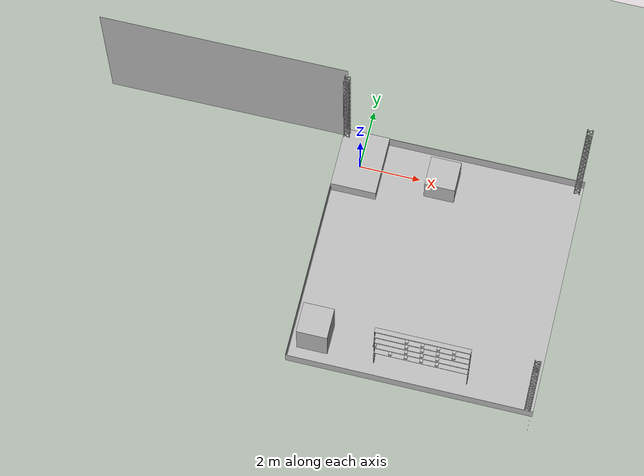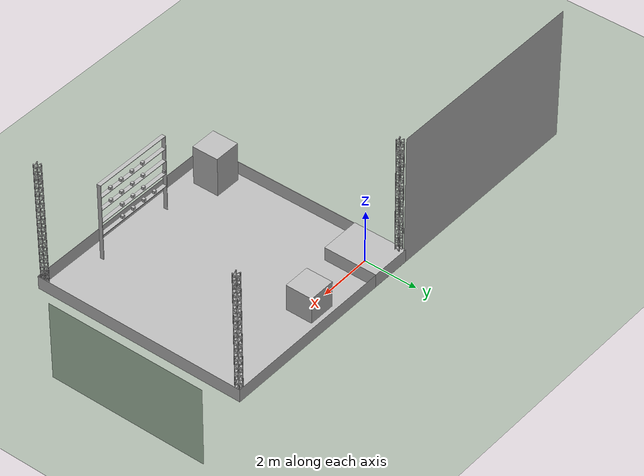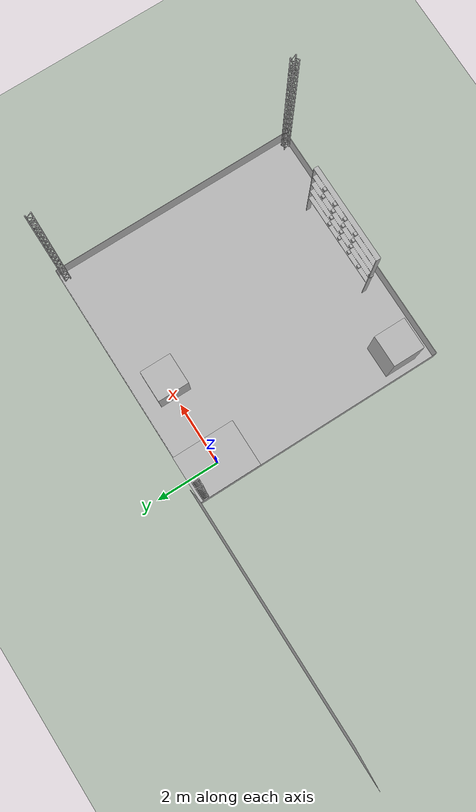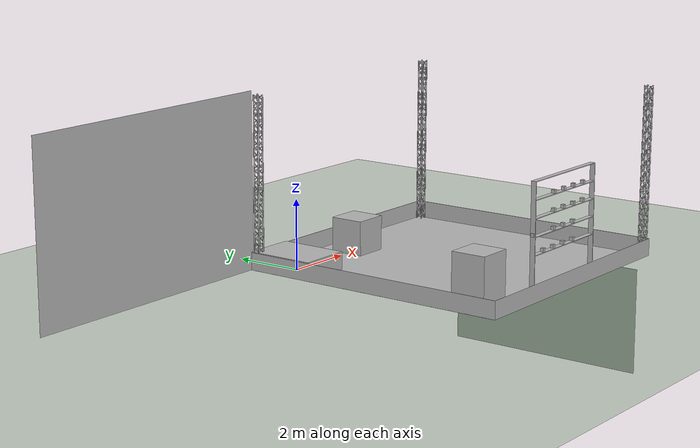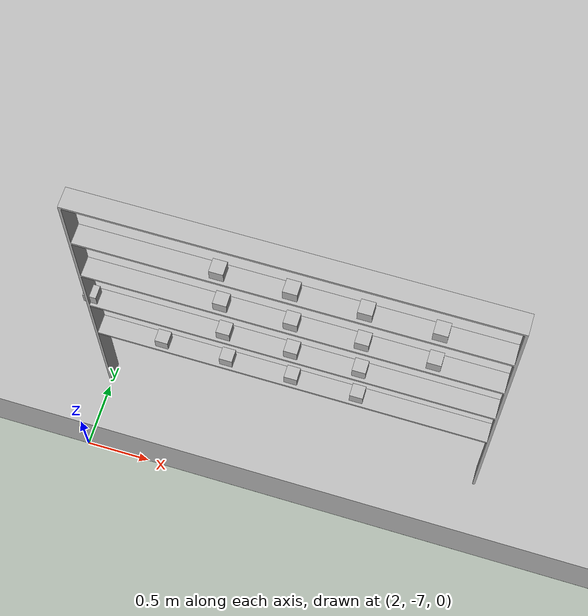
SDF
<?xml version="1.0" ?>
<sdf version="1.9">
  <world name="default">
    <plugin filename="gz-sim-physics-system" name="gz::sim::systems::Physics"/>
    <plugin filename="gz-sim-user-commands-system" name="gz::sim::systems::UserCommands"/>
    <plugin filename="gz-sim-scene-broadcaster-system" name="gz::sim::systems::SceneBroadcaster"/>
    <plugin filename="gz-sim-sensors-system" name="gz::sim::systems::Sensors">
      <render_engine>ogre2</render_engine>
    </plugin>

    <gui fullscreen="0">
      <camera name="user_camera">
        <pose>15 2 10 0 0.6 -2.64</pose>
      </camera>
    </gui>

    <light type="directional" name="sun">
      <cast_shadows>true</cast_shadows>
      <pose>250 250 600 0 0 0</pose>
      <diffuse>0.8 0.8 0.8 1</diffuse>
      <specular>0.2 0.2 0.2 1</specular>
      <direction>0 0 -1</direction>
    </light>

    <model name="ground_plane">
      <static>true</static>
      <link name="link">
        <collision name="collision">
          <geometry><plane><normal>0 0 1</normal><size>250 250</size></plane></geometry>
        </collision>
        <visual name="visual">
          <geometry><plane><normal>0 0 1</normal><size>250 250</size></plane></geometry>
          <material><ambient>0.3 0.5 0.3 1</ambient><diffuse>0.3 0.5 0.3 1</diffuse></material>
        </visual>
      </link>
    </model>

    <include><name>arena</name><uri>model://arena_spawn</uri><pose>-0.75 -7.0 0.001 0 0 0</pose></include>
    <include><name>takeoff_platform</name><uri>model://takeoff_platform</uri><pose>0 0 0 0 0 0</pose></include>
    <include><name>banner</name><uri>model://banner</uri><pose>-0.75 -6.9 0 0 0 0</pose></include>
    <include><name>banner_2</name><uri>model://banner_2</uri><pose>-0.65 1.0 0 0 0 -1.57</pose></include>
    <include><name>landing_platform_A</name><uri>model://suspended_landing_platform</uri><pose>2.75 0.0 1.0 0 0 0</pose></include>
    <include><name>landing_platform_E</name><uri>model://suspended_landing_platform</uri><pose>0.0 -6.0 1.5 0 0 0</pose></include>
    <include><name>barcodeshelf</name><uri>model://barcode_shelf</uri><pose>5.0 -6.45 0.0 0.0 0.0 1.57</pose></include>

    <include><name>box_A0</name><uri>model://box_A0</uri><pose>4.0 -6.375 2.55 0 0 0</pose></include>
    <include><name>box_A1</name><uri>model://box_A1</uri><pose>4.5 -6.375 2.55 0 1.57 0</pose></include>
    <include><name>box_A2</name><uri>model://box_A2</uri><pose>3.0 -6.375 2.55 0 0 0</pose></include>
    <include><name>box_A3</name><uri>model://box_A3</uri><pose>3.5 -6.375 2.55 0 1.57 0</pose></include>
    <include><name>box_B0</name><uri>model://box_B0</uri><pose>3.5 -6.375 2.05 0 1.57 0</pose></include>
    <include><name>box_B1</name><uri>model://box_B1</uri><pose>4.0 -6.375 2.05 0 1.57 0</pose></include>
    <include><name>box_B2</name><uri>model://box_B2</uri><pose>3.0 -6.375 2.05 0 0 0</pose></include>
    <include><name>box_B3</name><uri>model://box_B3</uri><pose>4.5 -6.375 2.05 0 0 0</pose></include>
    <include><name>box_C0</name><uri>model://box_C0</uri><pose>3.5 -6.375 1.55 0 1.57 0</pose></include>
    <include><name>box_C1</name><uri>model://box_C1</uri><pose>2.0 -6.375 1.55 0 1.57 0</pose></include>
    <include><name>box_C2</name><uri>model://box_C2</uri><pose>3.0 -6.375 1.55 0 0 0</pose></include>
    <include><name>box_C3</name><uri>model://box_C3</uri><pose>4.0 -6.375 1.55 0 0 0</pose></include>
    <include><name>box_D0</name><uri>model://box_D0</uri><pose>3.0 -6.375 1.05 0 1.57 0</pose></include>
    <include><name>box_D1</name><uri>model://box_D1</uri><pose>4.0 -6.375 1.05 0 1.57 0</pose></include>
    <include><name>box_D2</name><uri>model://box_D2</uri><pose>2.5 -6.375 1.05 0 0 0</pose></include>
    <include><name>box_D3</name><uri>model://box_D3</uri><pose>3.5 -6.375 1.05 0 0 0</pose></include>
  </world>
</sdf>

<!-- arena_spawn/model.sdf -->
<sdf version='1.6'>
  <model name='arena_spawn'>
    <link name='link_arena'>
      <inertial>
        <mass>15</mass>
        <inertia>
          <ixx>1</ixx>
          <ixy>1</ixy>
          <ixz>1</ixz>
          <iyy>1</iyy>
          <iyz>1</iyz>
          <izz>1</izz>
        </inertia>
      </inertial>
      <self_collide>1</self_collide>
      <enable_wind>0</enable_wind>
      <kinematic>0</kinematic>
      <pose frame=''>0 0 0 0 -0 0</pose>
      <visual name='visual'>
        <pose frame=''>0 0 0 0 -0 0</pose>
        <geometry>
          <mesh>
            <uri>model://arena_spawn/meshes/Arena.obj</uri>
            <scale>1 1 1</scale>
          </mesh>
        </geometry>
        <transparency>0</transparency>
        <cast_shadows>1</cast_shadows>
      </visual>
      <collision name='collision'>
        <laser_retro>0</laser_retro>
        <max_contacts>10</max_contacts>
        <pose frame=''>0 0 0 0 -0 0</pose>
        <geometry>
          <mesh>
            <uri>model://arena_spawn/meshes/Arena.obj</uri>
            <scale>1 1 1</scale>
          </mesh>
        </geometry>
        <surface>
          <friction>
            <ode>
              <mu>1</mu>
              <mu2>1</mu2>
              <fdir1>0 0 0</fdir1>
              <slip1>0</slip1>
              <slip2>0</slip2>
            </ode>
            <torsional>
              <coefficient>1</coefficient>
              <patch_radius>100</patch_radius>
              <surface_radius>100</surface_radius>
              <use_patch_radius>1</use_patch_radius>
              <ode>
                <slip>0</slip>
              </ode>
            </torsional>
          </friction>
          <bounce>
            <restitution_coefficient>0</restitution_coefficient>
            <threshold>1e+06</threshold>
          </bounce>
          <contact>
            <collide_without_contact>0</collide_without_contact>
            <collide_without_contact_bitmask>1</collide_without_contact_bitmask>
            <collide_bitmask>1</collide_bitmask>
            <ode>
              <soft_cfm>0</soft_cfm>
              <soft_erp>0.2</soft_erp>
              <kp>1e+13</kp>
              <kd>1</kd>
              <max_vel>0.01</max_vel>
              <min_depth>0</min_depth>
            </ode>
            <bullet>
              <split_impulse>1</split_impulse>
              <split_impulse_penetration_threshold>-0.01</split_impulse_penetration_threshold>
              <soft_cfm>0</soft_cfm>
              <soft_erp>0.2</soft_erp>
              <kp>1e+13</kp>
              <kd>1</kd>
            </bullet>
          </contact>
        </surface>
      </collision>
    </link>
    <link name='pilar_2'>
      <inertial>
        <mass>1</mass>
        <inertia>
          <ixx>0.166667</ixx>
          <ixy>0</ixy>
          <ixz>0</ixz>
          <iyy>0.166667</iyy>
          <iyz>0</iyz>
          <izz>0.166667</izz>
        </inertia>
      </inertial>
      <self_collide>1</self_collide>
      <enable_wind>0</enable_wind>
      <kinematic>0</kinematic>
      <pose frame=''>7.7 0 0 0 -0 0</pose>
      <visual name='visual'>
        <pose frame=''>0 0 0 0 -0 0</pose>
        <geometry>
          <mesh>
            <uri>model://arena_spawn/meshes/pilar.obj</uri>
            <scale>1 1 1</scale>
          </mesh>
        </geometry>
        <transparency>0</transparency>
        <cast_shadows>1</cast_shadows>
      </visual>
      <collision name='collision'>
        <laser_retro>0</laser_retro>
        <max_contacts>10</max_contacts>
        <pose frame=''>0 0 0 0 -0 0</pose>
        <geometry>
          <mesh>
            <uri>model://arena_spawn/meshes/pilar.obj</uri>
            <scale>1 1 1</scale>
          </mesh>
        </geometry>
        <surface>
          <friction>
            <ode>
              <mu>1</mu>
              <mu2>1</mu2>
              <fdir1>0 0 0</fdir1>
              <slip1>0</slip1>
              <slip2>0</slip2>
            </ode>
            <torsional>
              <coefficient>1</coefficient>
              <patch_radius>100</patch_radius>
              <surface_radius>100</surface_radius>
              <use_patch_radius>1</use_patch_radius>
              <ode>
                <slip>0</slip>
              </ode>
            </torsional>
          </friction>
          <bounce>
            <restitution_coefficient>0</restitution_coefficient>
            <threshold>1e+06</threshold>
          </bounce>
          <contact>
            <collide_without_contact>0</collide_without_contact>
            <collide_without_contact_bitmask>1</collide_without_contact_bitmask>
            <collide_bitmask>1</collide_bitmask>
            <ode>
              <soft_cfm>0</soft_cfm>
              <soft_erp>0.2</soft_erp>
              <kp>1e+13</kp>
              <kd>1</kd>
              <max_vel>0.01</max_vel>
              <min_depth>0</min_depth>
            </ode>
            <bullet>
              <split_impulse>1</split_impulse>
              <split_impulse_penetration_threshold>-0.01</split_impulse_penetration_threshold>
              <soft_cfm>0</soft_cfm>
              <soft_erp>0.2</soft_erp>
              <kp>1e+13</kp>
              <kd>1</kd>
            </bullet>
          </contact>
        </surface>
      </collision>
    </link>
    <link name='pilar_3'>
      <inertial>
        <mass>1</mass>
        <inertia>
          <ixx>0.166667</ixx>
          <ixy>0</ixy>
          <ixz>0</ixz>
          <iyy>0.166667</iyy>
          <iyz>0</iyz>
          <izz>0.166667</izz>
        </inertia>
      </inertial>
      <self_collide>1</self_collide>
      <enable_wind>0</enable_wind>
      <kinematic>0</kinematic>
      <pose frame=''>0 7.7 0 0 -0 0</pose>
      <visual name='visual'>
        <pose frame=''>0 0 0 0 -0 0</pose>
        <geometry>
          <mesh>
            <uri>model://arena_spawn/meshes/pilar.obj</uri>
            <scale>1 1 1</scale>
          </mesh>
        </geometry>
        <transparency>0</transparency>
        <cast_shadows>1</cast_shadows>
      </visual>
      <collision name='collision'>
        <laser_retro>0</laser_retro>
        <max_contacts>10</max_contacts>
        <pose frame=''>0 0 0 0 -0 0</pose>
        <geometry>
          <mesh>
            <uri>model://arena_spawn/meshes/pilar.obj</uri>
            <scale>1 1 1</scale>
          </mesh>
        </geometry>
        <surface>
          <friction>
            <ode>
              <mu>1</mu>
              <mu2>1</mu2>
              <fdir1>0 0 0</fdir1>
              <slip1>0</slip1>
              <slip2>0</slip2>
            </ode>
            <torsional>
              <coefficient>1</coefficient>
              <patch_radius>100</patch_radius>
              <surface_radius>100</surface_radius>
              <use_patch_radius>1</use_patch_radius>
              <ode>
                <slip>0</slip>
              </ode>
            </torsional>
          </friction>
          <bounce>
            <restitution_coefficient>0</restitution_coefficient>
            <threshold>1e+06</threshold>
          </bounce>
          <contact>
            <collide_without_contact>0</collide_without_contact>
            <collide_without_contact_bitmask>1</collide_without_contact_bitmask>
            <collide_bitmask>1</collide_bitmask>
            <ode>
              <soft_cfm>0</soft_cfm>
              <soft_erp>0.2</soft_erp>
              <kp>1e+13</kp>
              <kd>1</kd>
              <max_vel>0.01</max_vel>
              <min_depth>0</min_depth>
            </ode>
            <bullet>
              <split_impulse>1</split_impulse>
              <split_impulse_penetration_threshold>-0.01</split_impulse_penetration_threshold>
              <soft_cfm>0</soft_cfm>
              <soft_erp>0.2</soft_erp>
              <kp>1e+13</kp>
              <kd>1</kd>
            </bullet>
          </contact>
        </surface>
      </collision>
    </link>
    <link name='pilar_4'>
      <inertial>
        <mass>1</mass>
        <inertia>
          <ixx>0.166667</ixx>
          <ixy>0</ixy>
          <ixz>0</ixz>
          <iyy>0.166667</iyy>
          <iyz>0</iyz>
          <izz>0.166667</izz>
        </inertia>
      </inertial>
      <self_collide>1</self_collide>
      <enable_wind>0</enable_wind>
      <kinematic>0</kinematic>
      <pose frame=''>7.7 7.7 0 0 -0 0</pose>
      <visual name='visual'>
        <pose frame=''>0 0 0 0 -0 0</pose>
        <geometry>
          <mesh>
            <uri>model://arena_spawn/meshes/pilar.obj</uri>
            <scale>1 1 1</scale>
          </mesh>
        </geometry>
        <transparency>0</transparency>
        <cast_shadows>1</cast_shadows>
      </visual>
      <collision name='collision'>
        <laser_retro>0</laser_retro>
        <max_contacts>10</max_contacts>
        <pose frame=''>0 0 0 0 -0 0</pose>
        <geometry>
          <mesh>
            <uri>model://arena_spawn/meshes/pilar.obj</uri>
            <scale>1 1 1</scale>
          </mesh>
        </geometry>
        <surface>
          <friction>
            <ode>
              <mu>1</mu>
              <mu2>1</mu2>
              <fdir1>0 0 0</fdir1>
              <slip1>0</slip1>
              <slip2>0</slip2>
            </ode>
            <torsional>
              <coefficient>1</coefficient>
              <patch_radius>100</patch_radius>
              <surface_radius>100</surface_radius>
              <use_patch_radius>1</use_patch_radius>
              <ode>
                <slip>0</slip>
              </ode>
            </torsional>
          </friction>
          <bounce>
            <restitution_coefficient>0</restitution_coefficient>
            <threshold>1e+06</threshold>
          </bounce>
          <contact>
            <collide_without_contact>0</collide_without_contact>
            <collide_without_contact_bitmask>1</collide_without_contact_bitmask>
            <collide_bitmask>1</collide_bitmask>
            <ode>
              <soft_cfm>0</soft_cfm>
              <soft_erp>0.2</soft_erp>
              <kp>1e+13</kp>
              <kd>1</kd>
              <max_vel>0.01</max_vel>
              <min_depth>0</min_depth>
            </ode>
            <bullet>
              <split_impulse>1</split_impulse>
              <split_impulse_penetration_threshold>-0.01</split_impulse_penetration_threshold>
              <soft_cfm>0</soft_cfm>
              <soft_erp>0.2</soft_erp>
              <kp>1e+13</kp>
              <kd>1</kd>
            </bullet>
          </contact>
        </surface>
      </collision>
    </link>
    <static>1</static>
    <pose frame=''>0 0 0.0005 0 -0 0</pose>
  </model>
</sdf>

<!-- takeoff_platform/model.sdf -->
<sdf version='1.6'>
  <model name='takeoff_platform'>
    <link name='link_takeoff_platform'>
      <inertial>
        <mass>15</mass>
        <inertia>
          <ixx>1</ixx>
          <ixy>0</ixy>
          <ixz>0</ixz>
          <iyy>1</iyy>
          <iyz>0</iyz>
          <izz>1</izz>
        </inertia>
      </inertial>
      <self_collide>1</self_collide>
      <enable_wind>0</enable_wind>
      <kinematic>0</kinematic>
      <pose frame=''>0 0 0 0 -0 0</pose>
      <visual name='visual'>
        <pose frame=''>0 0 0 0 -0 0</pose>
        <geometry>
          <mesh>
            <uri>model://takeoff_platform/meshes/takeoff_platform.obj</uri>
            <scale>1 1 1</scale>
          </mesh>
        </geometry>
        <transparency>0</transparency>
        <cast_shadows>1</cast_shadows>
      </visual>
      <collision name='collision'>
        <laser_retro>0</laser_retro>
        <max_contacts>10</max_contacts>
        <pose frame=''>0 0 0 0 -0 0</pose>
        <geometry>
          <mesh>
            <uri>model://takeoff_platform/meshes/takeoff_platform.obj</uri>
            <scale>1 1 1</scale>
          </mesh>
        </geometry>
        <surface>
          <friction>
            <ode>
              <mu>1</mu>
              <mu2>1</mu2>
              <fdir1>0 0 0</fdir1>
              <slip1>0</slip1>
              <slip2>0</slip2>
            </ode>
            <torsional>
              <coefficient>1</coefficient>
              <patch_radius>100</patch_radius>
              <surface_radius>100</surface_radius>
              <use_patch_radius>1</use_patch_radius>
              <ode>
                <slip>0</slip>
              </ode>
            </torsional>
          </friction>
          <bounce>
            <restitution_coefficient>0</restitution_coefficient>
            <threshold>1e+06</threshold>
          </bounce>
          <contact>
            <collide_without_contact>0</collide_without_contact>
            <collide_without_contact_bitmask>1</collide_without_contact_bitmask>
            <collide_bitmask>1</collide_bitmask>
            <ode>
              <soft_cfm>0</soft_cfm>
              <soft_erp>0.2</soft_erp>
              <kp>1e+13</kp>
              <kd>1</kd>
              <max_vel>0.01</max_vel>
              <min_depth>0</min_depth>
            </ode>
            <bullet>
              <split_impulse>1</split_impulse>
              <split_impulse_penetration_threshold>-0.01</split_impulse_penetration_threshold>
              <soft_cfm>0</soft_cfm>
              <soft_erp>0.2</soft_erp>
              <kp>1e+13</kp>
              <kd>1</kd>
            </bullet>
          </contact>
        </surface>
      </collision>
    </link>
    <static>1</static>
    <pose frame=''>0 0 0.0005 0 -0 0</pose>
  </model>
</sdf>

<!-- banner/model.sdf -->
<sdf version='1.9'>
  <model name='banner'>
    <link name='link_0'>
      <inertial>
        <mass>1</mass>
        <inertia>
          <ixx>0.166667</ixx> <ixy>0</ixy> <ixz>0</ixz>
          <iyy>0.166667</iyy> <iyz>0</iyz> <izz>0.166667</izz>
        </inertia>
      </inertial>
      <pose>0 0 0 0 0 0</pose>
      <visual name='visual'>
        <geometry>
          <mesh>
            <uri>model://banner/meshes/banner.obj</uri>
            <scale>1.0 1.0 1.0</scale>
          </mesh>
        </geometry>
      </visual>
      <collision name='collision'>
        <geometry>
          <mesh>
            <uri>model://banner/meshes/banner.obj</uri>
            <scale>1.0 1.0 1.0</scale>
          </mesh>
        </geometry>
      </collision>
    </link>
    <static>true</static>
  </model>
</sdf>

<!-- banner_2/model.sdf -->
<sdf version='1.6'>
  <model name='banner_2'>
    <link name='link_0'>
      <inertial>
        <mass>1</mass>
        <inertia>
          <ixx>0.166667</ixx>
          <ixy>0</ixy>
          <ixz>0</ixz>
          <iyy>0.166667</iyy>
          <iyz>0</iyz>
          <izz>0.166667</izz>
        </inertia>
      </inertial>
      <pose>0 0 0 0 -0 0</pose>
      <visual name='visual'>
        <pose>0 0 0 0 -0 -1.57</pose>
        <geometry>
          <mesh>
            <uri>model://banner_2/meshes/banner.obj</uri>
            <scale>1.0 1.0 1.0</scale>
          </mesh>
        </geometry>
        <transparency>0</transparency>
        <cast_shadows>1</cast_shadows>
      </visual>
      <collision name='collision'>
        <laser_retro>0</laser_retro>
        <max_contacts>10</max_contacts>
        <pose>0 0 0 0 -0 -1.57</pose>
        <geometry>
          <mesh>
            <uri>model://banner_2/meshes/banner.obj</uri>
            <scale>1.0 1.0 1.0</scale>
          </mesh>
        </geometry>
      </collision>
    </link>
    <static>1</static>
    <allow_auto_disable>1</allow_auto_disable>
  </model>
</sdf>

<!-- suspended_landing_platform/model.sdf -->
<sdf version='1.6'>
  <model name='suspended_landing_platform'>
    <link name='link_suspended_landing_platform'>
      <inertial>
        <mass>1</mass>
        <inertia>
          <ixx>0.166667</ixx>
          <ixy>0</ixy>
          <ixz>0</ixz>
          <iyy>0.166667</iyy>
          <iyz>0</iyz>
          <izz>0.166667</izz>
        </inertia>
        <pose>0 0 0 0 -0 0</pose>
      </inertial>
      <self_collide>0</self_collide>
      <enable_wind>0</enable_wind>
      <kinematic>0</kinematic>
      <pose>0 0 0 0 -0 0</pose>
      <gravity>1</gravity>
      <visual name='visual'>
        <pose frame=''>0 0 0 0 -0 0</pose>
        <geometry>
          <mesh>
            <uri>model://suspended_landing_platform/meshes/suspended_landing_platform.obj</uri>
            <scale>1 1 1</scale>
          </mesh>
        </geometry>
        <transparency>0</transparency>
        <cast_shadows>1</cast_shadows>
      </visual>
      <collision name='collision'>
        <laser_retro>0</laser_retro>
        <max_contacts>10</max_contacts>
        <pose>0 0 -0.75 0 -0 0</pose>
        <geometry>
          <box>
            <size>1 1 1.5</size>
          </box>
        </geometry>
        <surface>
          <friction>
            <ode>
              <mu>100</mu>
              <mu2>100</mu2>
              <fdir1>0 0 0</fdir1>
              <slip1>0</slip1>
              <slip2>0</slip2>
            </ode>
            <torsional>
              <coefficient>1</coefficient>
              <patch_radius>1</patch_radius>
              <surface_radius>1</surface_radius>
              <use_patch_radius>1</use_patch_radius>
              <ode>
                <slip>0</slip>
              </ode>
            </torsional>
          </friction>
          <bounce>
            <restitution_coefficient>1</restitution_coefficient>
            <threshold>1e+06</threshold>
          </bounce>
          <contact>
            <collide_without_contact>0</collide_without_contact>
            <collide_without_contact_bitmask>1</collide_without_contact_bitmask>
            <collide_bitmask>1</collide_bitmask>
            <ode>
              <soft_cfm>0</soft_cfm>
              <soft_erp>0.2</soft_erp>
              <kp>1e+13</kp>
              <kd>1</kd>
              <max_vel>0.01</max_vel>
              <min_depth>0</min_depth>
            </ode>
            <bullet>
              <split_impulse>1</split_impulse>
              <split_impulse_penetration_threshold>-0.01</split_impulse_penetration_threshold>
              <soft_cfm>0</soft_cfm>
              <soft_erp>0.2</soft_erp>
              <kp>1e+13</kp>
              <kd>1</kd>
            </bullet>
          </contact>
        </surface>
      </collision>
    </link>
    <static>1</static>
    <allow_auto_disable>1</allow_auto_disable>
  </model>
</sdf>

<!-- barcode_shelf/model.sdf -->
<sdf version='1.7'>
  <model name='barcode_shelf'>
    <link name='link_barcode_shelf'>
      <inertial>
        <mass>1</mass>
        <inertia>
          <ixx>0.166667</ixx>
          <ixy>0</ixy>
          <ixz>0</ixz>
          <iyy>0.166667</iyy>
          <iyz>0</iyz>
          <izz>0.166667</izz>
        </inertia>
      </inertial>
      <pose>0 0 0 1.5708 -0 0</pose>
      <visual name='visual'>
        <pose>0 0 0 0 -0 0</pose>
        <geometry>
          <mesh>
            <uri>model://barcode_shelf/meshes/shelf.obj</uri>
            <scale>1 1 1</scale>
          </mesh>
        </geometry>
        <transparency>0</transparency>
        <cast_shadows>1</cast_shadows>
      </visual>
      <collision name='collision'>
        <laser_retro>0</laser_retro>
        <max_contacts>10</max_contacts>
        <pose>0 0 0 0 -0 0</pose>
        <geometry>
          <mesh>
            <uri>model://barcode_shelf/meshes/shelf.obj</uri>
            <scale>1 1 1</scale>
          </mesh>
        </geometry>
        <surface>
          <friction>
            <ode>
              <mu>1</mu>
              <mu2>1</mu2>
              <fdir1>0 0 0</fdir1>
              <slip1>0</slip1>
              <slip2>0</slip2>
            </ode>
            <torsional>
              <coefficient>1</coefficient>
              <patch_radius>0</patch_radius>
              <surface_radius>0</surface_radius>
              <use_patch_radius>1</use_patch_radius>
              <ode>
                <slip>0</slip>
              </ode>
            </torsional>
          </friction>
          <bounce>
            <restitution_coefficient>0</restitution_coefficient>
            <threshold>1e+06</threshold>
          </bounce>
          <contact>
            <collide_without_contact>0</collide_without_contact>
            <collide_without_contact_bitmask>1</collide_without_contact_bitmask>
            <collide_bitmask>1</collide_bitmask>
            <ode>
              <soft_cfm>0</soft_cfm>
              <soft_erp>0.2</soft_erp>
              <kp>1e+13</kp>
              <kd>1</kd>
              <max_vel>0.01</max_vel>
              <min_depth>0</min_depth>
            </ode>
            <bullet>
              <split_impulse>1</split_impulse>
              <split_impulse_penetration_threshold>-0.01</split_impulse_penetration_threshold>
              <soft_cfm>0</soft_cfm>
              <soft_erp>0.2</soft_erp>
              <kp>1e+13</kp>
              <kd>1</kd>
            </bullet>
          </contact>
        </surface>
      </collision>
    </link>
    <static>1</static>
    <allow_auto_disable>1</allow_auto_disable>
  </model>
</sdf>

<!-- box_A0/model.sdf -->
<sdf version='1.6'>
  <model name='box_A0'>
    <link name='link_box_A0'>
      <inertial>
        <mass>0.160</mass>
        <inertia>
          <ixx>0.000272</ixx>
          <ixy>0</ixy>
          <ixz>0</ixz>
          <iyy>0.000272</iyy>
          <iyz>0</iyz>
          <izz>0.000272</izz>
        </inertia>
        <pose>0 0 0 0 -0 0</pose>
      </inertial>
      <self_collide>0</self_collide>
      <enable_wind>0</enable_wind>
      <kinematic>0</kinematic>
      <pose>0 0 0 0 -0 0</pose>
      <gravity>1</gravity>
      <visual name='visual'>
        <pose frame=''>0 0 0 0 -0 0</pose>
        <geometry>
          <mesh>
            <uri>model://box_A0/meshes/codebar_box.obj</uri>
            <scale>1 1 1</scale>
          </mesh>
        </geometry>
        <transparency>0</transparency>
        <cast_shadows>1</cast_shadows>
      </visual>
      <collision name='collision'>
        <laser_retro>1</laser_retro>
        <max_contacts>100000</max_contacts>
        <pose>0 0 0 0 -0 0</pose>
        <geometry>
          <box>
            <size>0.1 0.1 0.1</size>
          </box>
        </geometry>
        <surface>
          <friction>
            <ode>
              <mu>1</mu>
              <mu2>1</mu2>
              <fdir1>0 0 0</fdir1>
              <slip1>0</slip1>
              <slip2>0</slip2>
            </ode>
            <torsional>
              <coefficient>1</coefficient>
              <patch_radius>1</patch_radius>
              <surface_radius>1</surface_radius>
              <use_patch_radius>1</use_patch_radius>
              <ode>
                <slip>0</slip>
              </ode>
            </torsional>
          </friction>
          <bounce>
            <restitution_coefficient>0</restitution_coefficient>
            <threshold>1e+06</threshold>
          </bounce>
          <contact>
            <collide_without_contact>0</collide_without_contact>
            <collide_without_contact_bitmask>1</collide_without_contact_bitmask>
            <collide_bitmask>1</collide_bitmask>
            <ode>
              <soft_cfm>0</soft_cfm>
              <soft_erp>0.2</soft_erp>
              <kp>1e+13</kp>
              <kd>1</kd>
              <max_vel>0.01</max_vel>
              <min_depth>0</min_depth>
            </ode>
            <bullet>
              <split_impulse>1</split_impulse>
              <split_impulse_penetration_threshold>-0.01</split_impulse_penetration_threshold>
              <soft_cfm>0</soft_cfm>
              <soft_erp>0.2</soft_erp>
              <kp>1e+13</kp>
              <kd>1</kd>
            </bullet>
          </contact>
        </surface>
      </collision>
    </link>
    <static>1</static>
    <allow_Auto_disable>1</allow_Auto_disable>
  </model>
</sdf>

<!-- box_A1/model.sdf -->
<sdf version='1.6'>
  <model name='box_A1'>
    <link name='link_box_A1'>
      <inertial>
        <mass>0.160</mass>
        <inertia>
          <ixx>0.000272</ixx>
          <ixy>0</ixy>
          <ixz>0</ixz>
          <iyy>0.000272</iyy>
          <iyz>0</iyz>
          <izz>0.000272</izz>
        </inertia>
        <pose>0 0 0 0 -0 0</pose>
      </inertial>
      <self_collide>0</self_collide>
      <enable_wind>0</enable_wind>
      <kinematic>0</kinematic>
      <pose>0 0 0 0 -0 0</pose>
      <gravity>1</gravity>
      <visual name='visual'>
        <pose frame=''>0 0 0 0 -0 0</pose>
        <geometry>
          <mesh>
            <uri>model://box_A1/meshes/codebar_box.obj</uri>
            <scale>1 1 1</scale>
          </mesh>
        </geometry>
        <transparency>0</transparency>
        <cast_shadows>1</cast_shadows>
      </visual>
      <collision name='collision'>
        <laser_retro>1</laser_retro>
        <max_contacts>100000</max_contacts>
        <pose>0 0 0 0 -0 0</pose>
        <geometry>
          <box>
            <size>0.1 0.1 0.1</size>
          </box>
        </geometry>
        <surface>
          <friction>
            <ode>
              <mu>1</mu>
              <mu2>1</mu2>
              <fdir1>0 0 0</fdir1>
              <slip1>0</slip1>
              <slip2>0</slip2>
            </ode>
            <torsional>
              <coefficient>1</coefficient>
              <patch_radius>1</patch_radius>
              <surface_radius>1</surface_radius>
              <use_patch_radius>1</use_patch_radius>
              <ode>
                <slip>0</slip>
              </ode>
            </torsional>
          </friction>
          <bounce>
            <restitution_coefficient>0</restitution_coefficient>
            <threshold>1e+06</threshold>
          </bounce>
          <contact>
            <collide_without_contact>0</collide_without_contact>
            <collide_without_contact_bitmask>1</collide_without_contact_bitmask>
            <collide_bitmask>1</collide_bitmask>
            <ode>
              <soft_cfm>0</soft_cfm>
              <soft_erp>0.2</soft_erp>
              <kp>1e+13</kp>
              <kd>1</kd>
              <max_vel>0.01</max_vel>
              <min_depth>0</min_depth>
            </ode>
            <bullet>
              <split_impulse>1</split_impulse>
              <split_impulse_penetration_threshold>-0.01</split_impulse_penetration_threshold>
              <soft_cfm>0</soft_cfm>
              <soft_erp>0.2</soft_erp>
              <kp>1e+13</kp>
              <kd>1</kd>
            </bullet>
          </contact>
        </surface>
      </collision>
    </link>
    <static>1</static>
    <allow_Auto_disable>1</allow_Auto_disable>
  </model>
</sdf>

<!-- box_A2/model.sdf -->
<sdf version='1.6'>
  <model name='box_A2'>
    <link name='link_box_A2'>
      <inertial>
        <mass>0.160</mass>
        <inertia>
          <ixx>0.000272</ixx>
          <ixy>0</ixy>
          <ixz>0</ixz>
          <iyy>0.000272</iyy>
          <iyz>0</iyz>
          <izz>0.000272</izz>
        </inertia>
        <pose>0 0 0 0 -0 0</pose>
      </inertial>
      <self_collide>0</self_collide>
      <enable_wind>0</enable_wind>
      <kinematic>0</kinematic>
      <pose>0 0 0 0 -0 0</pose>
      <gravity>1</gravity>
      <visual name='visual'>
        <pose frame=''>0 0 0 0 -0 0</pose>
        <geometry>
          <mesh>
            <uri>model://box_A2/meshes/codebar_box.obj</uri>
            <scale>1 1 1</scale>
          </mesh>
        </geometry>
        <transparency>0</transparency>
        <cast_shadows>1</cast_shadows>
      </visual>
      <collision name='collision'>
        <laser_retro>1</laser_retro>
        <max_contacts>100000</max_contacts>
        <pose>0 0 0 0 -0 0</pose>
        <geometry>
          <box>
            <size>0.1 0.1 0.1</size>
          </box>
        </geometry>
        <surface>
          <friction>
            <ode>
              <mu>1</mu>
              <mu2>1</mu2>
              <fdir1>0 0 0</fdir1>
              <slip1>0</slip1>
              <slip2>0</slip2>
            </ode>
            <torsional>
              <coefficient>1</coefficient>
              <patch_radius>1</patch_radius>
              <surface_radius>1</surface_radius>
              <use_patch_radius>1</use_patch_radius>
              <ode>
                <slip>0</slip>
              </ode>
            </torsional>
          </friction>
          <bounce>
            <restitution_coefficient>0</restitution_coefficient>
            <threshold>1e+06</threshold>
          </bounce>
          <contact>
            <collide_without_contact>0</collide_without_contact>
            <collide_without_contact_bitmask>1</collide_without_contact_bitmask>
            <collide_bitmask>1</collide_bitmask>
            <ode>
              <soft_cfm>0</soft_cfm>
              <soft_erp>0.2</soft_erp>
              <kp>1e+13</kp>
              <kd>1</kd>
              <max_vel>0.01</max_vel>
              <min_depth>0</min_depth>
            </ode>
            <bullet>
              <split_impulse>1</split_impulse>
              <split_impulse_penetration_threshold>-0.01</split_impulse_penetration_threshold>
              <soft_cfm>0</soft_cfm>
              <soft_erp>0.2</soft_erp>
              <kp>1e+13</kp>
              <kd>1</kd>
            </bullet>
          </contact>
        </surface>
      </collision>
    </link>
    <static>1</static>
    <allow_Auto_disable>1</allow_Auto_disable>
  </model>
</sdf>

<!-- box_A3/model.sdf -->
<sdf version='1.6'>
  <model name='box_A3'>
    <link name='link_box_A3'>
      <inertial>
        <mass>0.160</mass>
        <inertia>
          <ixx>0.000272</ixx>
          <ixy>0</ixy>
          <ixz>0</ixz>
          <iyy>0.000272</iyy>
          <iyz>0</iyz>
          <izz>0.000272</izz>
        </inertia>
        <pose>0 0 0 0 -0 0</pose>
      </inertial>
      <self_collide>0</self_collide>
      <enable_wind>0</enable_wind>
      <kinematic>0</kinematic>
      <pose>0 0 0 0 -0 0</pose>
      <gravity>1</gravity>
      <visual name='visual'>
        <pose frame=''>0 0 0 0 -0 0</pose>
        <geometry>
          <mesh>
            <uri>model://box_A3/meshes/codebar_box.obj</uri>
            <scale>1 1 1</scale>
          </mesh>
        </geometry>
        <transparency>0</transparency>
        <cast_shadows>1</cast_shadows>
      </visual>
      <collision name='collision'>
        <laser_retro>1</laser_retro>
        <max_contacts>100000</max_contacts>
        <pose>0 0 0 0 -0 0</pose>
        <geometry>
          <box>
            <size>0.1 0.1 0.1</size>
          </box>
        </geometry>
        <surface>
          <friction>
            <ode>
              <mu>1</mu>
              <mu2>1</mu2>
              <fdir1>0 0 0</fdir1>
              <slip1>0</slip1>
              <slip2>0</slip2>
            </ode>
            <torsional>
              <coefficient>1</coefficient>
              <patch_radius>1</patch_radius>
              <surface_radius>1</surface_radius>
              <use_patch_radius>1</use_patch_radius>
              <ode>
                <slip>0</slip>
              </ode>
            </torsional>
          </friction>
          <bounce>
            <restitution_coefficient>0</restitution_coefficient>
            <threshold>1e+06</threshold>
          </bounce>
          <contact>
            <collide_without_contact>0</collide_without_contact>
            <collide_without_contact_bitmask>1</collide_without_contact_bitmask>
            <collide_bitmask>1</collide_bitmask>
            <ode>
              <soft_cfm>0</soft_cfm>
              <soft_erp>0.2</soft_erp>
              <kp>1e+13</kp>
              <kd>1</kd>
              <max_vel>0.01</max_vel>
              <min_depth>0</min_depth>
            </ode>
            <bullet>
              <split_impulse>1</split_impulse>
              <split_impulse_penetration_threshold>-0.01</split_impulse_penetration_threshold>
              <soft_cfm>0</soft_cfm>
              <soft_erp>0.2</soft_erp>
              <kp>1e+13</kp>
              <kd>1</kd>
            </bullet>
          </contact>
        </surface>
      </collision>
    </link>
    <static>1</static>
    <allow_Auto_disable>1</allow_Auto_disable>
  </model>
</sdf>

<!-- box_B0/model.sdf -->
<sdf version='1.6'>
  <model name='box_B0'>
    <link name='link_box_B0'>
      <inertial>
        <mass>0.160</mass>
        <inertia>
          <ixx>0.000272</ixx>
          <ixy>0</ixy>
          <ixz>0</ixz>
          <iyy>0.000272</iyy>
          <iyz>0</iyz>
          <izz>0.000272</izz>
        </inertia>
        <pose>0 0 0 0 -0 0</pose>
      </inertial>
      <self_collide>0</self_collide>
      <enable_wind>0</enable_wind>
      <kinematic>0</kinematic>
      <pose>0 0 0 0 -0 0</pose>
      <gravity>1</gravity>
      <visual name='visual'>
        <pose frame=''>0 0 0 0 -0 0</pose>
        <geometry>
          <mesh>
            <uri>model://box_B0/meshes/codebar_box.obj</uri>
            <scale>1 1 1</scale>
          </mesh>
        </geometry>
        <transparency>0</transparency>
        <cast_shadows>1</cast_shadows>
      </visual>
      <collision name='collision'>
        <laser_retro>1</laser_retro>
        <max_contacts>100000</max_contacts>
        <pose>0 0 0 0 -0 0</pose>
        <geometry>
          <box>
            <size>0.1 0.1 0.1</size>
          </box>
        </geometry>
        <surface>
          <friction>
            <ode>
              <mu>1</mu>
              <mu2>1</mu2>
              <fdir1>0 0 0</fdir1>
              <slip1>0</slip1>
              <slip2>0</slip2>
            </ode>
            <torsional>
              <coefficient>1</coefficient>
              <patch_radius>1</patch_radius>
              <surface_radius>1</surface_radius>
              <use_patch_radius>1</use_patch_radius>
              <ode>
                <slip>0</slip>
              </ode>
            </torsional>
          </friction>
          <bounce>
            <restitution_coefficient>0</restitution_coefficient>
            <threshold>1e+06</threshold>
          </bounce>
          <contact>
            <collide_without_contact>0</collide_without_contact>
            <collide_without_contact_bitmask>1</collide_without_contact_bitmask>
            <collide_bitmask>1</collide_bitmask>
            <ode>
              <soft_cfm>0</soft_cfm>
              <soft_erp>0.2</soft_erp>
              <kp>1e+13</kp>
              <kd>1</kd>
              <max_vel>0.01</max_vel>
              <min_depth>0</min_depth>
            </ode>
            <bullet>
              <split_impulse>1</split_impulse>
              <split_impulse_penetration_threshold>-0.01</split_impulse_penetration_threshold>
              <soft_cfm>0</soft_cfm>
              <soft_erp>0.2</soft_erp>
              <kp>1e+13</kp>
              <kd>1</kd>
            </bullet>
          </contact>
        </surface>
      </collision>
    </link>
    <static>1</static>
    <allow_Auto_disable>1</allow_Auto_disable>
  </model>
</sdf>

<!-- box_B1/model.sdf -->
<sdf version='1.6'>
  <model name='box_B1'>
    <link name='link_box_B1'>
      <inertial>
        <mass>0.160</mass>
        <inertia>
          <ixx>0.000272</ixx>
          <ixy>0</ixy>
          <ixz>0</ixz>
          <iyy>0.000272</iyy>
          <iyz>0</iyz>
          <izz>0.000272</izz>
        </inertia>
        <pose>0 0 0 0 -0 0</pose>
      </inertial>
      <self_collide>0</self_collide>
      <enable_wind>0</enable_wind>
      <kinematic>0</kinematic>
      <pose>0 0 0 0 -0 0</pose>
      <gravity>1</gravity>
      <visual name='visual'>
        <pose frame=''>0 0 0 0 -0 0</pose>
        <geometry>
          <mesh>
            <uri>model://box_B1/meshes/codebar_box.obj</uri>
            <scale>1 1 1</scale>
          </mesh>
        </geometry>
        <transparency>0</transparency>
        <cast_shadows>1</cast_shadows>
      </visual>
      <collision name='collision'>
        <laser_retro>1</laser_retro>
        <max_contacts>100000</max_contacts>
        <pose>0 0 0 0 -0 0</pose>
        <geometry>
          <box>
            <size>0.1 0.1 0.1</size>
          </box>
        </geometry>
        <surface>
          <friction>
            <ode>
              <mu>1</mu>
              <mu2>1</mu2>
              <fdir1>0 0 0</fdir1>
              <slip1>0</slip1>
              <slip2>0</slip2>
            </ode>
            <torsional>
              <coefficient>1</coefficient>
              <patch_radius>1</patch_radius>
              <surface_radius>1</surface_radius>
              <use_patch_radius>1</use_patch_radius>
              <ode>
                <slip>0</slip>
              </ode>
            </torsional>
          </friction>
          <bounce>
            <restitution_coefficient>0</restitution_coefficient>
            <threshold>1e+06</threshold>
          </bounce>
          <contact>
            <collide_without_contact>0</collide_without_contact>
            <collide_without_contact_bitmask>1</collide_without_contact_bitmask>
            <collide_bitmask>1</collide_bitmask>
            <ode>
              <soft_cfm>0</soft_cfm>
              <soft_erp>0.2</soft_erp>
              <kp>1e+13</kp>
              <kd>1</kd>
              <max_vel>0.01</max_vel>
              <min_depth>0</min_depth>
            </ode>
            <bullet>
              <split_impulse>1</split_impulse>
              <split_impulse_penetration_threshold>-0.01</split_impulse_penetration_threshold>
              <soft_cfm>0</soft_cfm>
              <soft_erp>0.2</soft_erp>
              <kp>1e+13</kp>
              <kd>1</kd>
            </bullet>
          </contact>
        </surface>
      </collision>
    </link>
    <static>1</static>
    <allow_Auto_disable>1</allow_Auto_disable>
  </model>
</sdf>

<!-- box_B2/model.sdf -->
<sdf version='1.6'>
  <model name='box_B2'>
    <link name='link_box_B2'>
      <inertial>
        <mass>0.160</mass>
        <inertia>
          <ixx>0.000272</ixx>
          <ixy>0</ixy>
          <ixz>0</ixz>
          <iyy>0.000272</iyy>
          <iyz>0</iyz>
          <izz>0.000272</izz>
        </inertia>
        <pose>0 0 0 0 -0 0</pose>
      </inertial>
      <self_collide>0</self_collide>
      <enable_wind>0</enable_wind>
      <kinematic>0</kinematic>
      <pose>0 0 0 0 -0 0</pose>
      <gravity>1</gravity>
      <visual name='visual'>
        <pose frame=''>0 0 0 0 -0 0</pose>
        <geometry>
          <mesh>
            <uri>model://box_B2/meshes/codebar_box.obj</uri>
            <scale>1 1 1</scale>
          </mesh>
        </geometry>
        <transparency>0</transparency>
        <cast_shadows>1</cast_shadows>
      </visual>
      <collision name='collision'>
        <laser_retro>1</laser_retro>
        <max_contacts>100000</max_contacts>
        <pose>0 0 0 0 -0 0</pose>
        <geometry>
          <box>
            <size>0.1 0.1 0.1</size>
          </box>
        </geometry>
        <surface>
          <friction>
            <ode>
              <mu>1</mu>
              <mu2>1</mu2>
              <fdir1>0 0 0</fdir1>
              <slip1>0</slip1>
              <slip2>0</slip2>
            </ode>
            <torsional>
              <coefficient>1</coefficient>
              <patch_radius>1</patch_radius>
              <surface_radius>1</surface_radius>
              <use_patch_radius>1</use_patch_radius>
              <ode>
                <slip>0</slip>
              </ode>
            </torsional>
          </friction>
          <bounce>
            <restitution_coefficient>0</restitution_coefficient>
            <threshold>1e+06</threshold>
          </bounce>
          <contact>
            <collide_without_contact>0</collide_without_contact>
            <collide_without_contact_bitmask>1</collide_without_contact_bitmask>
            <collide_bitmask>1</collide_bitmask>
            <ode>
              <soft_cfm>0</soft_cfm>
              <soft_erp>0.2</soft_erp>
              <kp>1e+13</kp>
              <kd>1</kd>
              <max_vel>0.01</max_vel>
              <min_depth>0</min_depth>
            </ode>
            <bullet>
              <split_impulse>1</split_impulse>
              <split_impulse_penetration_threshold>-0.01</split_impulse_penetration_threshold>
              <soft_cfm>0</soft_cfm>
              <soft_erp>0.2</soft_erp>
              <kp>1e+13</kp>
              <kd>1</kd>
            </bullet>
          </contact>
        </surface>
      </collision>
    </link>
    <static>1</static>
    <allow_Auto_disable>1</allow_Auto_disable>
  </model>
</sdf>

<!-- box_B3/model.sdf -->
<sdf version='1.6'>
  <model name='box_B3'>
    <link name='link_box_B3'>
      <inertial>
        <mass>0.160</mass>
        <inertia>
          <ixx>0.000272</ixx>
          <ixy>0</ixy>
          <ixz>0</ixz>
          <iyy>0.000272</iyy>
          <iyz>0</iyz>
          <izz>0.000272</izz>
        </inertia>
        <pose>0 0 0 0 -0 0</pose>
      </inertial>
      <self_collide>0</self_collide>
      <enable_wind>0</enable_wind>
      <kinematic>0</kinematic>
      <pose>0 0 0 0 -0 0</pose>
      <gravity>1</gravity>
      <visual name='visual'>
        <pose frame=''>0 0 0 0 -0 0</pose>
        <geometry>
          <mesh>
            <uri>model://box_B3/meshes/codebar_box.obj</uri>
            <scale>1 1 1</scale>
          </mesh>
        </geometry>
        <transparency>0</transparency>
        <cast_shadows>1</cast_shadows>
      </visual>
      <collision name='collision'>
        <laser_retro>1</laser_retro>
        <max_contacts>100000</max_contacts>
        <pose>0 0 0 0 -0 0</pose>
        <geometry>
          <box>
            <size>0.1 0.1 0.1</size>
          </box>
        </geometry>
        <surface>
          <friction>
            <ode>
              <mu>1</mu>
              <mu2>1</mu2>
              <fdir1>0 0 0</fdir1>
              <slip1>0</slip1>
              <slip2>0</slip2>
            </ode>
            <torsional>
              <coefficient>1</coefficient>
              <patch_radius>1</patch_radius>
              <surface_radius>1</surface_radius>
              <use_patch_radius>1</use_patch_radius>
              <ode>
                <slip>0</slip>
              </ode>
            </torsional>
          </friction>
          <bounce>
            <restitution_coefficient>0</restitution_coefficient>
            <threshold>1e+06</threshold>
          </bounce>
          <contact>
            <collide_without_contact>0</collide_without_contact>
            <collide_without_contact_bitmask>1</collide_without_contact_bitmask>
            <collide_bitmask>1</collide_bitmask>
            <ode>
              <soft_cfm>0</soft_cfm>
              <soft_erp>0.2</soft_erp>
              <kp>1e+13</kp>
              <kd>1</kd>
              <max_vel>0.01</max_vel>
              <min_depth>0</min_depth>
            </ode>
            <bullet>
              <split_impulse>1</split_impulse>
              <split_impulse_penetration_threshold>-0.01</split_impulse_penetration_threshold>
              <soft_cfm>0</soft_cfm>
              <soft_erp>0.2</soft_erp>
              <kp>1e+13</kp>
              <kd>1</kd>
            </bullet>
          </contact>
        </surface>
      </collision>
    </link>
    <static>1</static>
    <allow_Auto_disable>1</allow_Auto_disable>
  </model>
</sdf>

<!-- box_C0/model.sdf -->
<sdf version='1.6'>
  <model name='box_C0'>
    <link name='link_box_C0'>
      <inertial>
        <mass>0.160</mass>
        <inertia>
          <ixx>0.000272</ixx>
          <ixy>0</ixy>
          <ixz>0</ixz>
          <iyy>0.000272</iyy>
          <iyz>0</iyz>
          <izz>0.000272</izz>
        </inertia>
        <pose>0 0 0 0 -0 0</pose>
      </inertial>
      <self_collide>0</self_collide>
      <enable_wind>0</enable_wind>
      <kinematic>0</kinematic>
      <pose>0 0 0 0 -0 0</pose>
      <gravity>1</gravity>
      <visual name='visual'>
        <pose frame=''>0 0 0 0 -0 0</pose>
        <geometry>
          <mesh>
            <uri>model://box_C0/meshes/codebar_box.obj</uri>
            <scale>1 1 1</scale>
          </mesh>
        </geometry>
        <transparency>0</transparency>
        <cast_shadows>1</cast_shadows>
      </visual>
      <collision name='collision'>
        <laser_retro>1</laser_retro>
        <max_contacts>100000</max_contacts>
        <pose>0 0 0 0 -0 0</pose>
        <geometry>
          <box>
            <size>0.1 0.1 0.1</size>
          </box>
        </geometry>
        <surface>
          <friction>
            <ode>
              <mu>1</mu>
              <mu2>1</mu2>
              <fdir1>0 0 0</fdir1>
              <slip1>0</slip1>
              <slip2>0</slip2>
            </ode>
            <torsional>
              <coefficient>1</coefficient>
              <patch_radius>1</patch_radius>
              <surface_radius>1</surface_radius>
              <use_patch_radius>1</use_patch_radius>
              <ode>
                <slip>0</slip>
              </ode>
            </torsional>
          </friction>
          <bounce>
            <restitution_coefficient>0</restitution_coefficient>
            <threshold>1e+06</threshold>
          </bounce>
          <contact>
            <collide_without_contact>0</collide_without_contact>
            <collide_without_contact_bitmask>1</collide_without_contact_bitmask>
            <collide_bitmask>1</collide_bitmask>
            <ode>
              <soft_cfm>0</soft_cfm>
              <soft_erp>0.2</soft_erp>
              <kp>1e+13</kp>
              <kd>1</kd>
              <max_vel>0.01</max_vel>
              <min_depth>0</min_depth>
            </ode>
            <bullet>
              <split_impulse>1</split_impulse>
              <split_impulse_penetration_threshold>-0.01</split_impulse_penetration_threshold>
              <soft_cfm>0</soft_cfm>
              <soft_erp>0.2</soft_erp>
              <kp>1e+13</kp>
              <kd>1</kd>
            </bullet>
          </contact>
        </surface>
      </collision>
    </link>
    <static>1</static>
    <allow_Auto_disable>1</allow_Auto_disable>
  </model>
</sdf>

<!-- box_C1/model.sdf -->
<sdf version='1.6'>
  <model name='box_C1'>
    <link name='link_box_C1'>
      <inertial>
        <mass>0.160</mass>
        <inertia>
          <ixx>0.000272</ixx>
          <ixy>0</ixy>
          <ixz>0</ixz>
          <iyy>0.000272</iyy>
          <iyz>0</iyz>
          <izz>0.000272</izz>
        </inertia>
        <pose>0 0 0 0 -0 0</pose>
      </inertial>
      <self_collide>0</self_collide>
      <enable_wind>0</enable_wind>
      <kinematic>0</kinematic>
      <pose>0 0 0 0 -0 0</pose>
      <gravity>1</gravity>
      <visual name='visual'>
        <pose frame=''>0 0 0 0 -0 0</pose>
        <geometry>
          <mesh>
            <uri>model://box_C1/meshes/codebar_box.obj</uri>
            <scale>1 1 1</scale>
          </mesh>
        </geometry>
        <transparency>0</transparency>
        <cast_shadows>1</cast_shadows>
      </visual>
      <collision name='collision'>
        <laser_retro>1</laser_retro>
        <max_contacts>100000</max_contacts>
        <pose>0 0 0 0 -0 0</pose>
        <geometry>
          <box>
            <size>0.1 0.1 0.1</size>
          </box>
        </geometry>
        <surface>
          <friction>
            <ode>
              <mu>1</mu>
              <mu2>1</mu2>
              <fdir1>0 0 0</fdir1>
              <slip1>0</slip1>
              <slip2>0</slip2>
            </ode>
            <torsional>
              <coefficient>1</coefficient>
              <patch_radius>1</patch_radius>
              <surface_radius>1</surface_radius>
              <use_patch_radius>1</use_patch_radius>
              <ode>
                <slip>0</slip>
              </ode>
            </torsional>
          </friction>
          <bounce>
            <restitution_coefficient>0</restitution_coefficient>
            <threshold>1e+06</threshold>
          </bounce>
          <contact>
            <collide_without_contact>0</collide_without_contact>
            <collide_without_contact_bitmask>1</collide_without_contact_bitmask>
            <collide_bitmask>1</collide_bitmask>
            <ode>
              <soft_cfm>0</soft_cfm>
              <soft_erp>0.2</soft_erp>
              <kp>1e+13</kp>
              <kd>1</kd>
              <max_vel>0.01</max_vel>
              <min_depth>0</min_depth>
            </ode>
            <bullet>
              <split_impulse>1</split_impulse>
              <split_impulse_penetration_threshold>-0.01</split_impulse_penetration_threshold>
              <soft_cfm>0</soft_cfm>
              <soft_erp>0.2</soft_erp>
              <kp>1e+13</kp>
              <kd>1</kd>
            </bullet>
          </contact>
        </surface>
      </collision>
    </link>
    <static>1</static>
    <allow_Auto_disable>1</allow_Auto_disable>
  </model>
</sdf>

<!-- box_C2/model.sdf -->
<sdf version='1.6'>
  <model name='box_C2'>
    <link name='link_box_C2'>
      <inertial>
        <mass>0.160</mass>
        <inertia>
          <ixx>0.000272</ixx>
          <ixy>0</ixy>
          <ixz>0</ixz>
          <iyy>0.000272</iyy>
          <iyz>0</iyz>
          <izz>0.000272</izz>
        </inertia>
        <pose>0 0 0 0 -0 0</pose>
      </inertial>
      <self_collide>0</self_collide>
      <enable_wind>0</enable_wind>
      <kinematic>0</kinematic>
      <pose>0 0 0 0 -0 0</pose>
      <gravity>1</gravity>
      <visual name='visual'>
        <pose frame=''>0 0 0 0 -0 0</pose>
        <geometry>
          <mesh>
            <uri>model://box_C2/meshes/codebar_box.obj</uri>
            <scale>1 1 1</scale>
          </mesh>
        </geometry>
        <transparency>0</transparency>
        <cast_shadows>1</cast_shadows>
      </visual>
      <collision name='collision'>
        <laser_retro>1</laser_retro>
        <max_contacts>100000</max_contacts>
        <pose>0 0 0 0 -0 0</pose>
        <geometry>
          <box>
            <size>0.1 0.1 0.1</size>
          </box>
        </geometry>
        <surface>
          <friction>
            <ode>
              <mu>1</mu>
              <mu2>1</mu2>
              <fdir1>0 0 0</fdir1>
              <slip1>0</slip1>
              <slip2>0</slip2>
            </ode>
            <torsional>
              <coefficient>1</coefficient>
              <patch_radius>1</patch_radius>
              <surface_radius>1</surface_radius>
              <use_patch_radius>1</use_patch_radius>
              <ode>
                <slip>0</slip>
              </ode>
            </torsional>
          </friction>
          <bounce>
            <restitution_coefficient>0</restitution_coefficient>
            <threshold>1e+06</threshold>
          </bounce>
          <contact>
            <collide_without_contact>0</collide_without_contact>
            <collide_without_contact_bitmask>1</collide_without_contact_bitmask>
            <collide_bitmask>1</collide_bitmask>
            <ode>
              <soft_cfm>0</soft_cfm>
              <soft_erp>0.2</soft_erp>
              <kp>1e+13</kp>
              <kd>1</kd>
              <max_vel>0.01</max_vel>
              <min_depth>0</min_depth>
            </ode>
            <bullet>
              <split_impulse>1</split_impulse>
              <split_impulse_penetration_threshold>-0.01</split_impulse_penetration_threshold>
              <soft_cfm>0</soft_cfm>
              <soft_erp>0.2</soft_erp>
              <kp>1e+13</kp>
              <kd>1</kd>
            </bullet>
          </contact>
        </surface>
      </collision>
    </link>
    <static>1</static>
    <allow_Auto_disable>1</allow_Auto_disable>
  </model>
</sdf>

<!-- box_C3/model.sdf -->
<sdf version='1.6'>
  <model name='box_C3'>
    <link name='link_box_C3'>
      <inertial>
        <mass>0.160</mass>
        <inertia>
          <ixx>0.000272</ixx>
          <ixy>0</ixy>
          <ixz>0</ixz>
          <iyy>0.000272</iyy>
          <iyz>0</iyz>
          <izz>0.000272</izz>
        </inertia>
        <pose>0 0 0 0 -0 0</pose>
      </inertial>
      <self_collide>0</self_collide>
      <enable_wind>0</enable_wind>
      <kinematic>0</kinematic>
      <pose>0 0 0 0 -0 0</pose>
      <gravity>1</gravity>
      <visual name='visual'>
        <pose frame=''>0 0 0 0 -0 0</pose>
        <geometry>
          <mesh>
            <uri>model://box_C3/meshes/codebar_box.obj</uri>
            <scale>1 1 1</scale>
          </mesh>
        </geometry>
        <transparency>0</transparency>
        <cast_shadows>1</cast_shadows>
      </visual>
      <collision name='collision'>
        <laser_retro>1</laser_retro>
        <max_contacts>100000</max_contacts>
        <pose>0 0 0 0 -0 0</pose>
        <geometry>
          <box>
            <size>0.1 0.1 0.1</size>
          </box>
        </geometry>
        <surface>
          <friction>
            <ode>
              <mu>1</mu>
              <mu2>1</mu2>
              <fdir1>0 0 0</fdir1>
              <slip1>0</slip1>
              <slip2>0</slip2>
            </ode>
            <torsional>
              <coefficient>1</coefficient>
              <patch_radius>1</patch_radius>
              <surface_radius>1</surface_radius>
              <use_patch_radius>1</use_patch_radius>
              <ode>
                <slip>0</slip>
              </ode>
            </torsional>
          </friction>
          <bounce>
            <restitution_coefficient>0</restitution_coefficient>
            <threshold>1e+06</threshold>
          </bounce>
          <contact>
            <collide_without_contact>0</collide_without_contact>
            <collide_without_contact_bitmask>1</collide_without_contact_bitmask>
            <collide_bitmask>1</collide_bitmask>
            <ode>
              <soft_cfm>0</soft_cfm>
              <soft_erp>0.2</soft_erp>
              <kp>1e+13</kp>
              <kd>1</kd>
              <max_vel>0.01</max_vel>
              <min_depth>0</min_depth>
            </ode>
            <bullet>
              <split_impulse>1</split_impulse>
              <split_impulse_penetration_threshold>-0.01</split_impulse_penetration_threshold>
              <soft_cfm>0</soft_cfm>
              <soft_erp>0.2</soft_erp>
              <kp>1e+13</kp>
              <kd>1</kd>
            </bullet>
          </contact>
        </surface>
      </collision>
    </link>
    <static>1</static>
    <allow_Auto_disable>1</allow_Auto_disable>
  </model>
</sdf>

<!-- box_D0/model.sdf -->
<sdf version='1.6'>
  <model name='box_D0'>
    <link name='link_box_D0'>
      <inertial>
        <mass>0.160</mass>
        <inertia>
          <ixx>0.000272</ixx>
          <ixy>0</ixy>
          <ixz>0</ixz>
          <iyy>0.000272</iyy>
          <iyz>0</iyz>
          <izz>0.000272</izz>
        </inertia>
        <pose>0 0 0 0 -0 0</pose>
      </inertial>
      <self_collide>0</self_collide>
      <enable_wind>0</enable_wind>
      <kinematic>0</kinematic>
      <pose>0 0 0 0 -0 0</pose>
      <gravity>1</gravity>
      <visual name='visual'>
        <pose frame=''>0 0 0 0 -0 0</pose>
        <geometry>
          <mesh>
            <uri>model://box_D0/meshes/codebar_box.obj</uri>
            <scale>1 1 1</scale>
          </mesh>
        </geometry>
        <transparency>0</transparency>
        <cast_shadows>1</cast_shadows>
      </visual>
      <collision name='collision'>
        <laser_retro>1</laser_retro>
        <max_contacts>100000</max_contacts>
        <pose>0 0 0 0 -0 0</pose>
        <geometry>
          <box>
            <size>0.1 0.1 0.1</size>
          </box>
        </geometry>
        <surface>
          <friction>
            <ode>
              <mu>1</mu>
              <mu2>1</mu2>
              <fdir1>0 0 0</fdir1>
              <slip1>0</slip1>
              <slip2>0</slip2>
            </ode>
            <torsional>
              <coefficient>1</coefficient>
              <patch_radius>1</patch_radius>
              <surface_radius>1</surface_radius>
              <use_patch_radius>1</use_patch_radius>
              <ode>
                <slip>0</slip>
              </ode>
            </torsional>
          </friction>
          <bounce>
            <restitution_coefficient>0</restitution_coefficient>
            <threshold>1e+06</threshold>
          </bounce>
          <contact>
            <collide_without_contact>0</collide_without_contact>
            <collide_without_contact_bitmask>1</collide_without_contact_bitmask>
            <collide_bitmask>1</collide_bitmask>
            <ode>
              <soft_cfm>0</soft_cfm>
              <soft_erp>0.2</soft_erp>
              <kp>1e+13</kp>
              <kd>1</kd>
              <max_vel>0.01</max_vel>
              <min_depth>0</min_depth>
            </ode>
            <bullet>
              <split_impulse>1</split_impulse>
              <split_impulse_penetration_threshold>-0.01</split_impulse_penetration_threshold>
              <soft_cfm>0</soft_cfm>
              <soft_erp>0.2</soft_erp>
              <kp>1e+13</kp>
              <kd>1</kd>
            </bullet>
          </contact>
        </surface>
      </collision>
    </link>
    <static>1</static>
    <allow_Auto_disable>1</allow_Auto_disable>
  </model>
</sdf>

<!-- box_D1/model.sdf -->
<sdf version='1.6'>
  <model name='box_D1'>
    <link name='link_box_D1'>
      <inertial>
        <mass>0.160</mass>
        <inertia>
          <ixx>0.000272</ixx>
          <ixy>0</ixy>
          <ixz>0</ixz>
          <iyy>0.000272</iyy>
          <iyz>0</iyz>
          <izz>0.000272</izz>
        </inertia>
        <pose>0 0 0 0 -0 0</pose>
      </inertial>
      <self_collide>0</self_collide>
      <enable_wind>0</enable_wind>
      <kinematic>0</kinematic>
      <pose>0 0 0 0 -0 0</pose>
      <gravity>1</gravity>
      <visual name='visual'>
        <pose frame=''>0 0 0 0 -0 0</pose>
        <geometry>
          <mesh>
            <uri>model://box_D1/meshes/codebar_box.obj</uri>
            <scale>1 1 1</scale>
          </mesh>
        </geometry>
        <transparency>0</transparency>
        <cast_shadows>1</cast_shadows>
      </visual>
      <collision name='collision'>
        <laser_retro>1</laser_retro>
        <max_contacts>100000</max_contacts>
        <pose>0 0 0 0 -0 0</pose>
        <geometry>
          <box>
            <size>0.1 0.1 0.1</size>
          </box>
        </geometry>
        <surface>
          <friction>
            <ode>
              <mu>1</mu>
              <mu2>1</mu2>
              <fdir1>0 0 0</fdir1>
              <slip1>0</slip1>
              <slip2>0</slip2>
            </ode>
            <torsional>
              <coefficient>1</coefficient>
              <patch_radius>1</patch_radius>
              <surface_radius>1</surface_radius>
              <use_patch_radius>1</use_patch_radius>
              <ode>
                <slip>0</slip>
              </ode>
            </torsional>
          </friction>
          <bounce>
            <restitution_coefficient>0</restitution_coefficient>
            <threshold>1e+06</threshold>
          </bounce>
          <contact>
            <collide_without_contact>0</collide_without_contact>
            <collide_without_contact_bitmask>1</collide_without_contact_bitmask>
            <collide_bitmask>1</collide_bitmask>
            <ode>
              <soft_cfm>0</soft_cfm>
              <soft_erp>0.2</soft_erp>
              <kp>1e+13</kp>
              <kd>1</kd>
              <max_vel>0.01</max_vel>
              <min_depth>0</min_depth>
            </ode>
            <bullet>
              <split_impulse>1</split_impulse>
              <split_impulse_penetration_threshold>-0.01</split_impulse_penetration_threshold>
              <soft_cfm>0</soft_cfm>
              <soft_erp>0.2</soft_erp>
              <kp>1e+13</kp>
              <kd>1</kd>
            </bullet>
          </contact>
        </surface>
      </collision>
    </link>
    <static>1</static>
    <allow_Auto_disable>1</allow_Auto_disable>
  </model>
</sdf>

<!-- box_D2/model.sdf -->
<sdf version='1.6'>
  <model name='box_D2'>
    <link name='link_box_D2'>
      <inertial>
        <mass>0.160</mass>
        <inertia>
          <ixx>0.000272</ixx>
          <ixy>0</ixy>
          <ixz>0</ixz>
          <iyy>0.000272</iyy>
          <iyz>0</iyz>
          <izz>0.000272</izz>
        </inertia>
        <pose>0 0 0 0 -0 0</pose>
      </inertial>
      <self_collide>0</self_collide>
      <enable_wind>0</enable_wind>
      <kinematic>0</kinematic>
      <pose>0 0 0 0 -0 0</pose>
      <gravity>1</gravity>
      <visual name='visual'>
        <pose frame=''>0 0 0 0 -0 0</pose>
        <geometry>
          <mesh>
            <uri>model://box_D2/meshes/codebar_box.obj</uri>
            <scale>1 1 1</scale>
          </mesh>
        </geometry>
        <transparency>0</transparency>
        <cast_shadows>1</cast_shadows>
      </visual>
      <collision name='collision'>
        <laser_retro>1</laser_retro>
        <max_contacts>100000</max_contacts>
        <pose>0 0 0 0 -0 0</pose>
        <geometry>
          <box>
            <size>0.1 0.1 0.1</size>
          </box>
        </geometry>
        <surface>
          <friction>
            <ode>
              <mu>1</mu>
              <mu2>1</mu2>
              <fdir1>0 0 0</fdir1>
              <slip1>0</slip1>
              <slip2>0</slip2>
            </ode>
            <torsional>
              <coefficient>1</coefficient>
              <patch_radius>1</patch_radius>
              <surface_radius>1</surface_radius>
              <use_patch_radius>1</use_patch_radius>
              <ode>
                <slip>0</slip>
              </ode>
            </torsional>
          </friction>
          <bounce>
            <restitution_coefficient>0</restitution_coefficient>
            <threshold>1e+06</threshold>
          </bounce>
          <contact>
            <collide_without_contact>0</collide_without_contact>
            <collide_without_contact_bitmask>1</collide_without_contact_bitmask>
            <collide_bitmask>1</collide_bitmask>
            <ode>
              <soft_cfm>0</soft_cfm>
              <soft_erp>0.2</soft_erp>
              <kp>1e+13</kp>
              <kd>1</kd>
              <max_vel>0.01</max_vel>
              <min_depth>0</min_depth>
            </ode>
            <bullet>
              <split_impulse>1</split_impulse>
              <split_impulse_penetration_threshold>-0.01</split_impulse_penetration_threshold>
              <soft_cfm>0</soft_cfm>
              <soft_erp>0.2</soft_erp>
              <kp>1e+13</kp>
              <kd>1</kd>
            </bullet>
          </contact>
        </surface>
      </collision>
    </link>
    <static>1</static>
    <allow_Auto_disable>1</allow_Auto_disable>
  </model>
</sdf>

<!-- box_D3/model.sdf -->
<sdf version='1.6'>
  <model name='box_D3'>
    <link name='link_box_D3'>
      <inertial>
        <mass>0.160</mass>
        <inertia>
          <ixx>0.000272</ixx>
          <ixy>0</ixy>
          <ixz>0</ixz>
          <iyy>0.000272</iyy>
          <iyz>0</iyz>
          <izz>0.000272</izz>
        </inertia>
        <pose>0 0 0 0 -0 0</pose>
      </inertial>
      <self_collide>0</self_collide>
      <enable_wind>0</enable_wind>
      <kinematic>0</kinematic>
      <pose>0 0 0 0 -0 0</pose>
      <gravity>1</gravity>
      <visual name='visual'>
        <pose frame=''>0 0 0 0 -0 0</pose>
        <geometry>
          <mesh>
            <uri>model://box_D3/meshes/codebar_box.obj</uri>
            <scale>1 1 1</scale>
          </mesh>
        </geometry>
        <transparency>0</transparency>
        <cast_shadows>1</cast_shadows>
      </visual>
      <collision name='collision'>
        <laser_retro>1</laser_retro>
        <max_contacts>100000</max_contacts>
        <pose>0 0 0 0 -0 0</pose>
        <geometry>
          <box>
            <size>0.1 0.1 0.1</size>
          </box>
        </geometry>
        <surface>
          <friction>
            <ode>
              <mu>1</mu>
              <mu2>1</mu2>
              <fdir1>0 0 0</fdir1>
              <slip1>0</slip1>
              <slip2>0</slip2>
            </ode>
            <torsional>
              <coefficient>1</coefficient>
              <patch_radius>1</patch_radius>
              <surface_radius>1</surface_radius>
              <use_patch_radius>1</use_patch_radius>
              <ode>
                <slip>0</slip>
              </ode>
            </torsional>
          </friction>
          <bounce>
            <restitution_coefficient>0</restitution_coefficient>
            <threshold>1e+06</threshold>
          </bounce>
          <contact>
            <collide_without_contact>0</collide_without_contact>
            <collide_without_contact_bitmask>1</collide_without_contact_bitmask>
            <collide_bitmask>1</collide_bitmask>
            <ode>
              <soft_cfm>0</soft_cfm>
              <soft_erp>0.2</soft_erp>
              <kp>1e+13</kp>
              <kd>1</kd>
              <max_vel>0.01</max_vel>
              <min_depth>0</min_depth>
            </ode>
            <bullet>
              <split_impulse>1</split_impulse>
              <split_impulse_penetration_threshold>-0.01</split_impulse_penetration_threshold>
              <soft_cfm>0</soft_cfm>
              <soft_erp>0.2</soft_erp>
              <kp>1e+13</kp>
              <kd>1</kd>
            </bullet>
          </contact>
        </surface>
      </collision>
    </link>
    <static>1</static>
    <allow_Auto_disable>1</allow_Auto_disable>
  </model>
</sdf>
